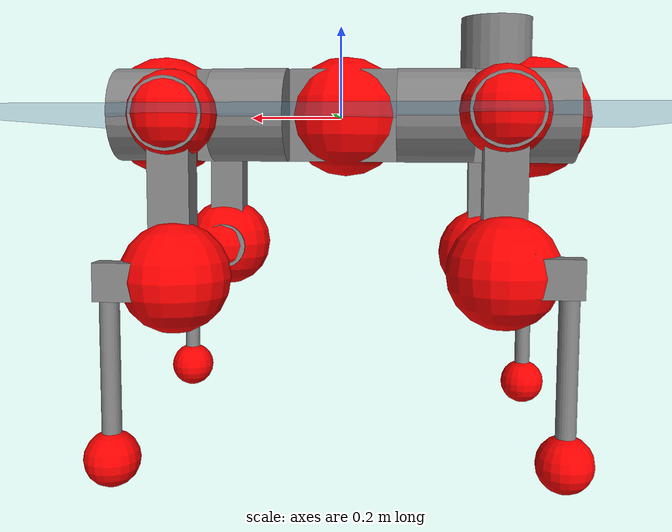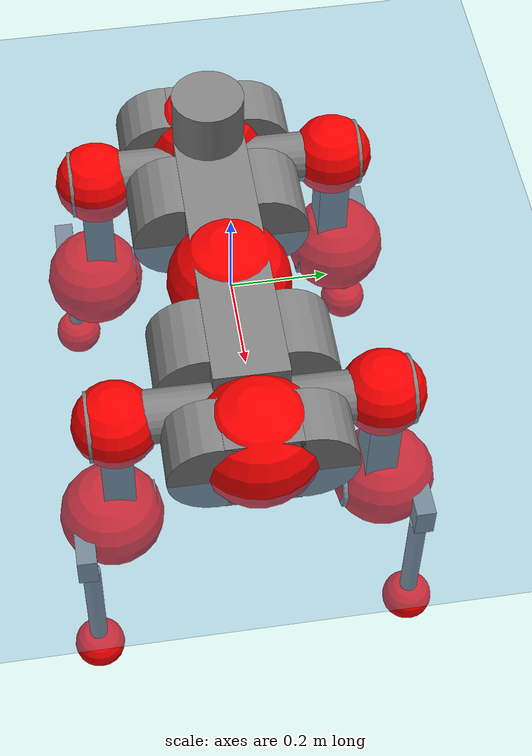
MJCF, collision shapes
<mujoco model="anymal_c">
  <compiler angle="radian" assetdir="assets" balanceinertia="true" inertiafromgeom="false"/>

  <option timestep="0.005" density="1.2" viscosity="2e-05"/>

  <size nkey="1"/>

  <visual>
    <quality shadowsize="8192"/>
    <map shadowclip="0.5"/>
  </visual>

  <default>
    <default class="/">
      <material specular="0" shininess="0.25"/>
      <geom contype="0" conaffinity="0" group="1" solref="-1000 -80"/>
      <site size="0.01 0.005 0.005" group="5"/>
      <general forcelimited="true" forcerange="-80 80" biastype="affine" gainprm="80" biasprm="0 -80 -2"/>
      <default class="anymal_c">
        <joint armature="0.01" damping="0.01" frictionloss="0.1"/>
        <default class="visual">
          <geom type="mesh" group="2"/>
          <default class="visual_zflip"/>
        </default>
        <default class="collision">
          <geom type="cylinder" group="3"/>
          <default class="foot">
            <geom size="0.03 0 0" type="sphere" condim="6" priority="1" friction="0.8 0.02 0.01" solimp="0.015 1 0.03"/>
          </default>
        </default>
      </default>
      <default class="reward_collision_sphere">
        <geom group="5" rgba="1 0 0 1"/>
      </default>
    </default>
  </default>

  <asset>
    <texture type="skybox" colorspace="auto" name="//unnamed_texture_0" builtin="gradient" rgb1="0.95 0.95 0.95" rgb2="0.95 0.95 0.95" width="100" height="600"/>
    <texture type="2d" colorspace="auto" name="texplane" builtin="checker" rgb1="0.345 0.575 0.748" rgb2="0.345 0.575 0.748" markrgb="1 1 1" width="512" height="512"/>
    <texture type="2d" colorspace="linear" name="base" file="base.png"/>
    <texture type="2d" colorspace="linear" name="top_shell" file="top_shell.png"/>
    <texture type="2d" colorspace="linear" name="bottom_shell" file="bottom_shell.png"/>
    <texture type="2d" colorspace="linear" name="remote" file="remote.png"/>
    <texture type="2d" colorspace="linear" name="hatch" file="hatch.png"/>
    <texture type="2d" colorspace="linear" name="handle" file="handle.png"/>
    <texture type="2d" colorspace="linear" name="face" file="face.png"/>
    <texture type="2d" colorspace="linear" name="battery" file="battery.png"/>
    <texture type="2d" colorspace="linear" name="lidar_cage" file="lidar_cage.png"/>
    <texture type="2d" colorspace="linear" name="depth_camera" file="depth_camera.png"/>
    <texture type="2d" colorspace="linear" name="wide_angle_camera" file="wide_angle_camera.png"/>
    <texture type="2d" colorspace="linear" name="lidar" file="lidar.png"/>
    <texture type="2d" colorspace="linear" name="drive" file="drive.png"/>
    <texture type="2d" colorspace="linear" name="hip_l" file="hip_l.png"/>
    <texture type="2d" colorspace="linear" name="shank_l" file="shank_l.png"/>
    <texture type="2d" colorspace="linear" name="foot" file="foot.png"/>
    <texture type="2d" colorspace="linear" name="thigh" file="thigh.png"/>
    <texture type="2d" colorspace="linear" name="shank_r" file="shank_r.png"/>
    <texture type="2d" colorspace="linear" name="hip_r" file="hip_r.png"/>
    <material name="MatPlane" class="/" texture="texplane" texuniform="true" texrepeat="2 2" specular="0.9" shininess="0.5"/>
    <material name="black_plastic" class="/" rgba="0.007 0.007 0.007 1"/>
    <material name="green" class="/" rgba="0.052 0.178 0.033 1"/>
    <material name="red" class="/" rgba="0.178 0.006 0.005 1"/>
    <material name="yellow" class="/" rgba="0.178 0.119 0.006 1"/>
    <material name="lwl" class="/" rgba="0.8 0.8 0.8 1"/>
    <material name="base" class="/" texture="base"/>
    <material name="top_shell" class="/" texture="top_shell"/>
    <material name="bottom_shell" class="/" texture="bottom_shell"/>
    <material name="hip_l" class="/" texture="hip_l"/>
    <material name="thigh" class="/" texture="thigh"/>
    <material name="shank_l" class="/" texture="shank_l"/>
    <material name="foot" class="/" texture="foot"/>
    <material name="hip_r" class="/" texture="hip_r"/>
    <material name="shank" class="/" texture="shank_r"/>
    <material name="hatch" class="/" texture="hatch"/>
    <material name="remote" class="/" texture="remote"/>
    <material name="handle" class="/" texture="handle"/>
    <material name="face" class="/" texture="face"/>
    <material name="depth_camera" class="/" texture="depth_camera"/>
    <material name="wide_angle_camera" class="/" texture="wide_angle_camera"/>
    <material name="battery" class="/" texture="battery"/>
    <material name="lidar_cage" class="/" texture="lidar_cage"/>
    <material name="lidar" class="/" texture="lidar"/>
    <material name="drive" class="/" texture="drive"/>
    <mesh name="base_0" class="/" file="base_0.obj"/>
    <mesh name="base_1" class="/" file="base_1.obj"/>
    <mesh name="base_2" class="/" file="base_2.obj"/>
    <mesh name="base_3" class="/" file="base_3.obj"/>
    <mesh name="base_4" class="/" file="base_4.obj"/>
    <mesh name="base_5" class="/" file="base_5.obj"/>
    <mesh name="top_shell" class="/" file="top_shell.obj"/>
    <mesh name="bottom_shell" class="/" file="bottom_shell.obj"/>
    <mesh name="remote" class="/" file="remote.obj"/>
    <mesh name="handle" class="/" file="handle.obj"/>
    <mesh name="face" class="/" file="face.obj"/>
    <mesh name="wide_angle_camera" class="/" file="wide_angle_camera.obj"/>
    <mesh name="depth_camera" class="/" file="depth_camera.obj"/>
    <mesh name="battery" class="/" file="battery.obj"/>
    <mesh name="lidar_cage" class="/" file="lidar_cage.obj"/>
    <mesh name="lidar" class="/" file="lidar.obj"/>
    <mesh name="drive" class="/" file="drive.obj"/>
    <mesh name="hip_l" class="/" file="hip_l.obj"/>
    <mesh name="thigh" class="/" file="thigh.obj"/>
    <mesh name="shank_l" class="/" file="shank_l.obj"/>
    <mesh name="foot" class="/" file="foot.obj"/>
    <mesh name="hip_r" class="/" file="hip_r.obj"/>
    <mesh name="hatch" class="/" file="hatch.obj"/>
    <mesh name="shank_r" class="/" file="shank_r.obj"/>
  </asset>

  <worldbody>
    <geom name="floor" class="/" size="100 100 0.125" type="plane" group="0" material="MatPlane"/>
    <light name="toplight_shadow" class="/" pos="0 0 5" dir="0.0990148 0.0990148 -0.990148" type="directional" ambient="0.04 0.04 0.04" diffuse="0.55 0.55 0.55" specular="0.12 0.12 0.12"/>
    <light name="toplight_fill" class="/" pos="0 0 5" dir="0.0990148 0.0990148 -0.990148" type="directional" castshadow="false" ambient="0.04 0.04 0.04" diffuse="0.3 0.3 0.3" specular="0.08 0.08 0.08"/>
    <body name="trunk" childclass="anymal_c" pos="-0.010614 -0.00185233 0.00312616" quat="0.999989 -0.000589487 -0.00294027 -0.00347404">
      <inertial pos="0.0121487 -0.00289854 0.0540442" quat="0.5024 0.497819 0.50075 0.49902" mass="28.1083" diaginertia="0.368297 2.17566 0.339915"/>
      <joint name="//unnamed_joint_0" type="free" armature="0" damping="0" frictionloss="0"/>
      <geom name="//unnamed_geom_1" class="visual" material="green" mesh="base_0"/>
      <geom name="//unnamed_geom_2" class="visual" material="yellow" mesh="base_1"/>
      <geom name="//unnamed_geom_3" class="visual" material="red" mesh="base_2"/>
      <geom name="//unnamed_geom_4" class="visual" material="black_plastic" mesh="base_3"/>
      <geom name="//unnamed_geom_5" class="visual" material="lwl" mesh="base_4"/>
      <geom name="//unnamed_geom_6" class="visual" material="base" mesh="base_5"/>
      <geom name="trunk_1" class="collision" size="0.318832 0.0769595 0.0989479" type="box"/>
      <geom name="trunk_2" class="collision" size="0.0989479 0.079708" pos="0.196118 0.0903991 0" quat="0.707107 0 0.707107 0"/>
      <geom name="trunk_3" class="collision" size="0.0989479 0.079708" pos="-0.196118 0.0903991 0" quat="0.707107 0 0.707107 0"/>
      <geom name="trunk_4" class="collision" size="0.0989479 0.079708" pos="0.196118 -0.0903991 0" quat="0.707107 0 0.707107 0"/>
      <geom name="trunk_5" class="collision" size="0.0989479 0.079708" pos="-0.196118 -0.0903991 0" quat="0.707107 0 0.707107 0"/>
      <geom name="//unnamed_geom_12" class="visual" material="top_shell" mesh="top_shell"/>
      <geom name="//unnamed_geom_13" class="visual" material="bottom_shell" mesh="bottom_shell"/>
      <geom name="//unnamed_geom_14" class="visual" material="remote" mesh="remote"/>
      <geom name="//unnamed_geom_15" class="visual" material="handle" mesh="handle"/>
      <geom name="//unnamed_geom_16" class="visual" pos="0.373752 0 0" quat="1 0 0 0" material="face" mesh="face"/>
      <geom name="trunk_6" class="collision" size="0.0604682 0.0769595 0.0989479" pos="0.423345 0 0" type="box"/>
      <geom name="//unnamed_geom_18" class="collision" size="0.0989479 0.0604682" pos="0.423345 0.0903991 0" quat="0.707107 0 0.707107 0"/>
      <geom name="//unnamed_geom_19" class="collision" size="0.0989479 0.0604682" pos="0.423345 -0.0903991 0" quat="0.707107 0 0.707107 0"/>
      <geom name="//unnamed_geom_20" class="visual" pos="0.416275 0 -0.0338168" quat="0.965926 0 0.258819 0" material="depth_camera" mesh="depth_camera"/>
      <geom name="//unnamed_geom_21" class="visual" pos="0.462569 0 0.0165442" material="wide_angle_camera" mesh="wide_angle_camera"/>
      <geom name="//unnamed_geom_22" class="visual_zflip" pos="-0.373752 0 0" quat="0 0 0 1" material="face" mesh="face"/>
      <geom name="trunk_7" class="collision" size="0.0604682 0.0769595 0.0989479" pos="-0.423345 0 0" quat="0 0 0 1" type="box"/>
      <geom name="//unnamed_geom_24" class="collision" size="0.0989479 0.0604682" pos="-0.423345 -0.0903991 0" quat="0 -0.707107 0 0.707107"/>
      <geom name="//unnamed_geom_25" class="collision" size="0.0989479 0.0604682" pos="-0.423345 0.0903991 0" quat="0 -0.707107 0 0.707107"/>
      <geom name="//unnamed_geom_26" class="visual" pos="-0.416275 0 -0.0338168" quat="0 -0.258819 0 0.965926" material="depth_camera" mesh="depth_camera"/>
      <geom name="//unnamed_geom_27" class="visual_zflip" pos="-0.462569 0 0.0165442" quat="0 0 0 1" material="wide_angle_camera" mesh="wide_angle_camera"/>
      <geom name="//unnamed_geom_28" class="visual" material="battery" mesh="battery"/>
      <geom name="//unnamed_geom_29" class="visual" pos="0 0.103864 0.0305584" quat="0.683013 -0.183013 0.183013 0.683013" material="depth_camera" mesh="depth_camera"/>
      <geom name="//unnamed_geom_30" class="visual" pos="0 -0.103864 0.0305584" quat="0.683013 0.183013 0.183013 -0.683013" material="depth_camera" mesh="depth_camera"/>
      <geom name="//unnamed_geom_31" class="visual" pos="-0.328216 0 0.0812288" quat="1 0 0 0" material="lidar_cage" mesh="lidar_cage"/>
      <geom name="trunk_8" class="collision" size="0.0769595 0.0659653" pos="-0.328216 0 0.147538"/>
      <geom name="//unnamed_geom_33" class="visual" pos="-0.328216 0.000153111 0.157153" quat="0.707107 0 0 -0.707107" material="lidar" mesh="lidar"/>
      <geom name="//unnamed_geom_34" class="visual" pos="0.270418 0.134241 3.21304e-09" quat="0.258819 0.965926 0 0" material="drive" mesh="drive"/>
      <geom name="//unnamed_geom_35" class="visual" pos="0.270418 -0.134241 -3.21304e-09" quat="0.258819 -0.965926 0 0" material="drive" mesh="drive"/>
      <geom name="//unnamed_geom_36" class="visual" pos="-0.270418 0.134241 -3.21304e-09" quat="0 0 0.965926 -0.258819" material="drive" mesh="drive"/>
      <geom name="//unnamed_geom_37" class="visual" pos="-0.270418 -0.134241 3.21304e-09" quat="0 0 -0.965926 -0.258819" material="drive" mesh="drive"/>
      <geom name="//unnamed_geom_38" class="visual" pos="0.104596 0 0.0806762" quat="1 0 0 0" material="hatch" mesh="hatch"/>
      <geom name="//unnamed_geom_39" class="reward_collision_sphere" size="0.131931"/>
      <geom name="//unnamed_geom_40" class="reward_collision_sphere" size="0.131931" pos="0.405762 0 0"/>
      <geom name="//unnamed_geom_41" class="reward_collision_sphere" size="0.131931" pos="-0.405762 0 0"/>
      <site name="imu" pos="0.215451 -0.00922255 0.00744694" size="0.0109942"/>
      <camera name="track" pos="0 -2.58283 0" quat="0.707107 0.707107 0 0" mode="trackcom"/>
      <camera name="ego_camera" pos="0.405762 0 -0.0442062" quat="-0.5 -0.5 0.5 0.5"/>
      <body name="LF_HIP" pos="0.270729 0.135254 -0.00250417" quat="0.259648 0.965703 0.00100535 0.000648464">
        <inertial pos="0.0513523 -0.0134905 -0.010407" quat="-0.129684 0.704112 -0.134942 0.684981" mass="3.84813" diaginertia="0.00303073 0.0168939 0.00540819"/>
        <joint name="LF_HAA" pos="0 0 0" axis="0.99866 -0.0477577 0.0199314" stiffness="0.00745358" range="-0.922329 0.457978" armature="0.0115179" damping="0" frictionloss="0.1106"/>
        <geom name="//unnamed_geom_42" class="visual" pos="0 0.000189008 -3.10445e-05" quat="0.258819 -0.965926 0 0" material="hip_l" mesh="hip_l"/>
        <geom name="//unnamed_geom_43" class="visual" pos="0.0540114 -0.0705115 -0.0393321" quat="0.183013 -0.683013 0.683013 0.183013" material="drive" mesh="drive"/>
        <geom name="//unnamed_geom_44" class="collision" size="0.054971 0.0769595" pos="0.0540114 -0.0154451 -0.00763109" quat="-0.353553 -0.612372 0.612372 -0.353553"/>
        <body name="LF_THIGH" pos="0.0506055 -0.09353 -0.0504693" quat="0.182679 -0.680321 0.685851 0.182757">
          <inertial pos="0.0217856 0.00518504 -0.262534" quat="0.993162 -0.00524867 -0.0806455 0.084249" mass="4.29033" diaginertia="0.0186136 0.11836 0.00640952"/>
          <joint name="LF_HFE" pos="0 0 0" axis="0.999976 -0.00686684 -0.000442649" stiffness="0.0538152" range="-3.19806 3.14374" armature="0.0124325" damping="0.0163849" frictionloss="0.118477"/>
          <geom name="//unnamed_geom_45" class="visual" pos="-0.00775394 -1.22184e-05 0" quat="0.707107 0 0 -0.707107" material="thigh" mesh="thigh"/>
          <geom name="//unnamed_geom_46" class="collision" size="0.0714624 0.0439768" pos="0.0360677 0 0" quat="0.5 0.5 -0.5 -0.5"/>
          <geom name="//unnamed_geom_47" class="collision" size="0.0412283 0.0329826 0.155364" pos="0.0270508 0 -0.156174" quat="0.707107 0 0 -0.707107" type="box"/>
          <geom name="//unnamed_geom_48" class="visual" pos="0.0904398 0 -0.314969" quat="1 0 0 0" material="drive" mesh="drive"/>
          <geom name="//unnamed_geom_49" class="collision" size="0.054971 0.0769595" pos="0.0273213 0 -0.314969" quat="0.707107 0 0.707107 0"/>
          <geom name="//unnamed_geom_50" class="reward_collision_sphere" size="0.0879537" pos="0.0225423 0 0"/>
          <body name="LF_SHANK" pos="0.0923187 0.00910272 -0.318371" quat="0.999997 -0.000533597 -0.00207917 0.00118842">
            <inertial pos="0.0123244 -0.080001 -0.0946173" quat="0.992577 -0.116208 -0.000198325 -0.0358549" mass="0.76532" diaginertia="0.00552379 0.0267972 0.0015741"/>
            <joint name="LF_KFE" pos="0 0 0" axis="0.999974 -0.00711989 0.000869537" range="-2.95989 3.17769" armature="0.00919381" damping="0.0449175" frictionloss="0.0893426"/>
            <geom name="//unnamed_geom_51" class="visual" pos="-0.00252839 -0.0134815 0" quat="0.707107 0 0 -0.707107" material="shank_l" mesh="shank_l"/>
            <geom name="LF_kfe_act" class="collision" size="0.0659653 0.0219884" pos="0.0180339 0 0" quat="0.5 0.5 -0.5 -0.5"/>
            <geom name="//unnamed_geom_53" class="collision" size="0.0632156 0.0371055 0.020889" pos="0.0180339 -0.0742551 0" quat="0.5 0.5 -0.5 -0.5" type="box"/>
            <geom name="//unnamed_geom_54" class="visual" pos="0.0117677 -0.117925 -0.373509" quat="0.382683 0 0 -0.92388" material="foot" mesh="foot"/>
            <geom name="LF_calf" class="collision" size="0.0192399 0.155295" pos="0.0117671 -0.11358 -0.186754" quat="0.707107 0 0 -0.707107"/>
            <geom name="LF_foot" class="foot" size="0.0206866" pos="0.0117671 -0.11358 -0.348643" quat="0.707107 0 0 -0.707107"/>
            <geom name="//unnamed_geom_57" class="reward_collision_sphere" size="0.109942" pos="-0.0450847 0 0"/>
            <geom name="//unnamed_geom_58" class="reward_collision_sphere" size="0.054971" pos="0.0117671 -0.11358 -0.348643"/>
            <site name="LF_foot" class="foot" pos="0.0117671 -0.11358 -0.348643" quat="0.707107 0 0 -0.707107" size="0.0109942"/>
          </body>
        </body>
      </body>
      <body name="RF_HIP" pos="0.272027 -0.135646 0.00924963" quat="0.256719 -0.966483 0.000689543 -0.00250473">
        <inertial pos="0.0475187 0.0281092 -0.00952467" quat="0.117955 0.678713 0.161671 0.70661" mass="3.75261" diaginertia="0.00397335 0.018529 0.00608"/>
        <joint name="RF_HAA" pos="0 0 0" axis="0.999811 0.0192125 -0.00287178" range="-0.51917 0.712718" armature="0.0105977" damping="0.0201872" frictionloss="0.152878"/>
        <geom name="//unnamed_geom_59" class="visual" pos="0 -0.000189007 -3.10444e-05" quat="0.258819 0.965926 0 0" material="hip_r" mesh="hip_r"/>
        <geom name="//unnamed_geom_60" class="visual" pos="0.0540114 0.0705115 -0.0393321" quat="0.183013 0.683013 0.683013 -0.183013" material="drive" mesh="drive"/>
        <geom name="//unnamed_geom_61" class="collision" size="0.054971 0.0769595" pos="0.0540114 0.0154451 -0.00763109" quat="-0.353553 0.612372 0.612372 0.353553"/>
        <body name="RF_THIGH" pos="0.0548672 0.104214 -0.0461957" quat="0.183117 0.683831 0.682212 -0.182839">
          <inertial pos="0.0236708 0.00667824 -0.273115" quat="0.995502 -0.00425699 -0.059042 0.0739731" mass="3.98768" diaginertia="0.018369 0.113512 0.00650105"/>
          <joint name="RF_HFE" pos="0 0 0" axis="0.99997 0.00767583 -0.000834586" stiffness="0.0216742" range="-3.17006 2.99609" armature="0.0114296" damping="0.00986951" frictionloss="0.0948674"/>
          <geom name="//unnamed_geom_62" class="visual" pos="-0.00775394 -1.22184e-05 0" quat="0.707107 0 0 -0.707107" material="thigh" mesh="thigh"/>
          <geom name="//unnamed_geom_63" class="collision" size="0.0714624 0.0439768" pos="0.0360677 0 0" quat="0.5 0.5 0.5 0.5"/>
          <geom name="//unnamed_geom_64" class="collision" size="0.0412283 0.0329826 0.155364" pos="0.0270508 0 -0.156174" quat="0.707107 0 0 0.707107" type="box"/>
          <geom name="//unnamed_geom_65" class="visual" pos="0.0904398 0 -0.314969" quat="1 0 0 0" material="drive" mesh="drive"/>
          <geom name="//unnamed_geom_66" class="collision" size="0.054971 0.0769595" pos="0.0273213 0 -0.314969" quat="0.707107 0 0.707107 0"/>
          <geom name="//unnamed_geom_67" class="reward_collision_sphere" size="0.0879537" pos="0.0225423 0 0"/>
          <body name="RF_SHANK" pos="0.0911126 0.00714071 -0.313819" quat="1 1.53965e-05 5.94411e-05 -0.000100488">
            <inertial pos="0.00426078 0.081004 -0.0874532" quat="0.989957 0.133093 0.0378356 0.0289791" mass="0.757503" diaginertia="0.00604499 0.0327931 0.00197163"/>
            <joint name="RF_KFE" pos="0 0 0" axis="0.998845 -0.0413851 -0.0243965" stiffness="0.0392657" range="-3.08732 3.02138" armature="0.0117254" damping="0" frictionloss="0.122226"/>
            <geom name="//unnamed_geom_68" class="visual" pos="-0.00252838 0.0134815 0" quat="0.707107 0 0 0.707107" material="shank" mesh="shank_r"/>
            <geom name="RF_kfe_act" class="collision" size="0.0659653 0.0219884" pos="0.0180339 0 0" quat="0.5 0.5 0.5 0.5"/>
            <geom name="//unnamed_geom_70" class="collision" size="0.0632156 0.0371055 0.020889" pos="0.0180339 0.0742551 0" quat="0.5 0.5 0.5 0.5" type="box"/>
            <geom name="//unnamed_geom_71" class="visual" pos="0.0117665 0.117925 -0.373509" quat="0.382683 0 0 0.92388" material="foot" mesh="foot"/>
            <geom name="RF_calf" class="collision" size="0.0192399 0.155295" pos="0.0117671 0.11358 -0.186754" quat="0.707107 0 0 0.707107"/>
            <geom name="RF_foot" class="foot" size="0.0335157" pos="0.0117671 0.11358 -0.348643" quat="0.707107 0 0 0.707107"/>
            <geom name="//unnamed_geom_74" class="reward_collision_sphere" size="0.109942" pos="-0.0450847 0 0"/>
            <geom name="//unnamed_geom_75" class="reward_collision_sphere" size="0.054971" pos="0.0117671 0.11358 -0.348643"/>
            <site name="RF_foot" class="foot" pos="0.0117671 0.11358 -0.348643" quat="0.707107 0 0 0.707107" size="0.0109942"/>
          </body>
        </body>
      </body>
      <body name="LH_HIP" pos="-0.270738 0.135268 0.00634209" quat="-0.000746786 0.000228507 0.965967 -0.258663">
        <inertial pos="0.04927 0.010059 -0.00285483" quat="0.16536 0.659288 0.169186 0.713703" mass="3.27058" diaginertia="0.00358029 0.0173408 0.0048419"/>
        <joint name="LH_HAA" pos="0 0 0" axis="0.999987 -0.00271059 0.00443235" range="-0.517268 0.811388" armature="0.0147036" damping="0.0104794" frictionloss="0.0631405"/>
        <geom name="//unnamed_geom_76" class="visual" pos="0 -0.000189007 -3.10444e-05" quat="-0.258819 -0.965926 0 0" material="hip_r" mesh="hip_r"/>
        <geom name="//unnamed_geom_77" class="visual" pos="0.0540114 0.0705115 -0.0393321" quat="0.183013 0.683013 0.683013 -0.183013" material="drive" mesh="drive"/>
        <geom name="//unnamed_geom_78" class="collision" size="0.054971 0.0769595" pos="0.0540114 0.0154451 -0.00763109" quat="-0.353553 0.612372 0.612372 0.353553"/>
        <body name="LH_THIGH" pos="0.0544017 0.101905 -0.0547428" quat="0.18312 0.683567 0.682475 -0.182843">
          <inertial pos="0.0272253 3.1509e-05 -0.27065" quat="0.993568 -0.00563944 -0.0793114 0.0806249" mass="3.55845" diaginertia="0.0183359 0.107814 0.00639845"/>
          <joint name="LH_HFE" pos="0 0 0" axis="0.999722 -0.00237152 0.0234534" range="-3.1049 3.17724" armature="0.00765589" damping="0.0277367" frictionloss="0.107306"/>
          <geom name="//unnamed_geom_79" class="visual" pos="-0.00775394 -1.22184e-05 0" quat="0.707107 0 0 -0.707107" material="thigh" mesh="thigh"/>
          <geom name="//unnamed_geom_80" class="collision" size="0.0714624 0.0439768" pos="0.0360677 0 0" quat="0.5 0.5 -0.5 -0.5"/>
          <geom name="//unnamed_geom_81" class="collision" size="0.0412283 0.0329826 0.155364" pos="0.0270508 0 -0.156174" quat="0.707107 0 0 -0.707107" type="box"/>
          <geom name="//unnamed_geom_82" class="visual" pos="0.0904398 0 -0.314969" quat="1 0 0 0" material="drive" mesh="drive"/>
          <geom name="//unnamed_geom_83" class="collision" size="0.054971 0.0769595" pos="0.0273213 0 -0.314969" quat="0.707107 0 0.707107 0"/>
          <geom name="//unnamed_geom_84" class="reward_collision_sphere" size="0.0879537" pos="0.0225423 0 0"/>
          <body name="LH_SHANK" pos="0.0914568 2.29902e-05 -0.305793" quat="1 7.7146e-05 6.0444e-05 -1.02382e-05">
            <inertial pos="0.00650457 0.0689131 -0.087347" quat="0.994981 0.0973804 -0.00314046 0.0227867" mass="0.766272" diaginertia="0.00625353 0.0333925 0.00204819"/>
            <joint name="LH_KFE" pos="0 0 0" axis="0.999994 0.00275361 -0.00231103" stiffness="0.0526587" range="-3.14351 3.08351" armature="0.00889616" damping="0.031932" frictionloss="0.0555556"/>
            <geom name="//unnamed_geom_85" class="visual" pos="-0.00252838 0.0134815 0" quat="-0.707107 0 0 -0.707107" material="shank" mesh="shank_r"/>
            <geom name="LH_kfe_act" class="collision" size="0.0659653 0.0219884" pos="0.0180339 0 0" quat="0.5 0.5 -0.5 -0.5"/>
            <geom name="//unnamed_geom_87" class="collision" size="0.0632156 0.0371055 0.020889" pos="0.0180339 0.0742551 0" quat="0.5 0.5 -0.5 -0.5" type="box"/>
            <geom name="//unnamed_geom_88" class="visual" pos="0.0117665 0.117925 -0.373509" quat="-0.382683 0 0 -0.92388" material="foot" mesh="foot"/>
            <geom name="LH_calf" class="collision" size="0.0192399 0.155295" pos="0.0117671 0.11358 -0.186754" quat="0.707107 0 0 -0.707107"/>
            <geom name="LH_foot" class="foot" size="0.0374259" pos="0.0117671 0.11358 -0.348643" quat="0.707107 0 0 -0.707107"/>
            <geom name="//unnamed_geom_91" class="reward_collision_sphere" size="0.109942" pos="-0.0450847 0 0"/>
            <geom name="//unnamed_geom_92" class="reward_collision_sphere" size="0.054971" pos="0.0117671 0.11358 -0.348643"/>
            <site name="LH_foot" class="foot" pos="0.0117671 0.11358 -0.348643" quat="0.707107 0 0 -0.707107" size="0.0109942"/>
          </body>
        </body>
      </body>
      <body name="RH_HIP" pos="-0.271941 -0.130507 0.00130208" quat="0.00266595 -0.0039563 -0.965731 -0.259503">
        <inertial pos="0.0411099 -0.0261132 0.000697986" quat="-0.113216 0.707016 -0.16017 0.679452" mass="3.67544" diaginertia="0.0034277 0.0172931 0.0053185"/>
        <joint name="RH_HAA" pos="0 0 0" axis="0.998665 0.0500257 -0.0128513" range="-0.753177 0.513134" armature="0.0128712" damping="0.00903536" frictionloss="0.113279"/>
        <geom name="//unnamed_geom_93" class="visual" pos="0 0.000189008 -3.10445e-05" quat="-0.258819 0.965926 0 0" material="hip_l" mesh="hip_l"/>
        <geom name="//unnamed_geom_94" class="visual" pos="0.0540114 -0.0705115 -0.0393321" quat="-0.183013 0.683013 -0.683013 -0.183013" material="drive" mesh="drive"/>
        <geom name="//unnamed_geom_95" class="collision" size="0.054971 0.0769595" pos="0.0540114 -0.0154451 -0.00763109" quat="0.353553 0.612372 -0.612372 0.353553"/>
        <body name="RH_THIGH" pos="0.0543953 -0.0918136 -0.0363383" quat="-0.182636 0.683098 -0.683109 -0.182713">
          <inertial pos="0.026578 0.000611912 -0.271011" quat="0.993358 -0.00327214 -0.0839822 0.0785886" mass="4.46191" diaginertia="0.017739 0.0997885 0.00690414"/>
          <joint name="RH_HFE" pos="0 0 0" axis="0.999997 -0.00181705 -0.0017351" range="-3.15131 2.981" armature="0.0100998" damping="0.0141449" frictionloss="0.113017"/>
          <geom name="//unnamed_geom_96" class="visual" pos="-0.00775394 -1.22184e-05 0" quat="0.707107 0 0 -0.707107" material="thigh" mesh="thigh"/>
          <geom name="//unnamed_geom_97" class="collision" size="0.0714624 0.0439768" pos="0.0360677 0 0" quat="0.5 0.5 0.5 0.5"/>
          <geom name="//unnamed_geom_98" class="collision" size="0.0412283 0.0329826 0.155364" pos="0.0270508 0 -0.156174" quat="0.707107 0 0 0.707107" type="box"/>
          <geom name="//unnamed_geom_99" class="visual" pos="0.0904398 0 -0.314969" quat="1 0 0 0" material="drive" mesh="drive"/>
          <geom name="//unnamed_geom_100" class="collision" size="0.054971 0.0769595" pos="0.0273213 0 -0.314969" quat="0.707107 0 0.707107 0"/>
          <geom name="//unnamed_geom_101" class="reward_collision_sphere" size="0.0879537" pos="0.0225423 0 0"/>
          <body name="RH_SHANK" pos="0.0900464 0.00334099 -0.318001" quat="1 0.000559948 0.000131186 -2.92631e-05">
            <inertial pos="0.0111176 -0.0775245 -0.091149" quat="0.993007 -0.114207 -0.0204835 -0.0217839" mass="0.76227" diaginertia="0.00590086 0.0338495 0.00167163"/>
            <joint name="RH_KFE" pos="0 0 0" axis="0.999067 0.0288706 0.0321203" range="-3.10289 3.11034" armature="0.0113662" damping="0" frictionloss="0.112513"/>
            <geom name="//unnamed_geom_102" class="visual" pos="-0.00252839 -0.0134815 0" quat="0.707107 0 0 -0.707107" material="shank_l" mesh="shank_l"/>
            <geom name="RH_kfe_act" class="collision" size="0.0659653 0.0219884" pos="0.0180339 0 0" quat="0.5 0.5 0.5 0.5"/>
            <geom name="//unnamed_geom_104" class="collision" size="0.0632156 0.0371055 0.020889" pos="0.0180339 -0.0742551 0" quat="0.5 0.5 0.5 0.5" type="box"/>
            <geom name="//unnamed_geom_105" class="visual" pos="0.0117677 -0.117925 -0.373509" quat="0.382683 0 0 -0.92388" material="foot" mesh="foot"/>
            <geom name="RH_calf" class="collision" size="0.0192399 0.155295" pos="0.0117671 -0.11358 -0.186754" quat="0.707107 0 0 0.707107"/>
            <geom name="RH_foot" class="foot" size="0.0427519" pos="0.0117671 -0.11358 -0.348643" quat="0.707107 0 0 0.707107"/>
            <geom name="//unnamed_geom_108" class="reward_collision_sphere" size="0.109942" pos="-0.0450847 0 0"/>
            <geom name="//unnamed_geom_109" class="reward_collision_sphere" size="0.054971" pos="0.0117671 -0.11358 -0.348643"/>
            <site name="RH_foot" class="foot" pos="0.0117671 -0.11358 -0.348643" quat="0.707107 0 0 0.707107" size="0.0109942"/>
          </body>
        </body>
      </body>
    </body>
  </worldbody>

  <contact>
    <pair class="/" geom1="floor" geom2="LF_foot" name="//unnamed_contact_0"/>
    <pair class="/" geom1="floor" geom2="RF_foot" name="//unnamed_contact_1"/>
    <pair class="/" geom1="floor" geom2="LH_foot" name="//unnamed_contact_2"/>
    <pair class="/" geom1="floor" geom2="RH_foot" name="//unnamed_contact_3"/>
  </contact>

  <actuator>
    <general name="LF_HAA" class="/" joint="LF_HAA" forcerange="-90.2385 90.2385" gainprm="78.8225" biasprm="0 -78.8225 -2.55644"/>
    <general name="LF_HFE" class="/" joint="LF_HFE" forcerange="-100.604 100.604" gainprm="78.8225" biasprm="0 -78.8225 -2.55644"/>
    <general name="LF_KFE" class="/" joint="LF_KFE" forcerange="-84.1214 84.1214" gainprm="78.8225" biasprm="0 -78.8225 -2.55644"/>
    <general name="RF_HAA" class="/" joint="RF_HAA" forcerange="-84.7866 84.7866" gainprm="78.8225" biasprm="0 -78.8225 -2.55644"/>
    <general name="RF_HFE" class="/" joint="RF_HFE" forcerange="-75.9952 75.9952" gainprm="78.8225" biasprm="0 -78.8225 -2.55644"/>
    <general name="RF_KFE" class="/" joint="RF_KFE" forcerange="-87.0498 87.0498" gainprm="78.8225" biasprm="0 -78.8225 -2.55644"/>
    <general name="LH_HAA" class="/" joint="LH_HAA" forcerange="-56.2932 56.2932" gainprm="78.8225" biasprm="0 -78.8225 -2.55644"/>
    <general name="LH_HFE" class="/" joint="LH_HFE" forcerange="-99.4913 99.4913" gainprm="78.8225" biasprm="0 -78.8225 -2.55644"/>
    <general name="LH_KFE" class="/" joint="LH_KFE" forcerange="-119.655 119.655" gainprm="78.8225" biasprm="0 -78.8225 -2.55644"/>
    <general name="RH_HAA" class="/" joint="RH_HAA" forcerange="-106.076 106.076" gainprm="78.8225" biasprm="0 -78.8225 -2.55644"/>
    <general name="RH_HFE" class="/" joint="RH_HFE" forcerange="-57.7691 57.7691" gainprm="78.8225" biasprm="0 -78.8225 -2.55644"/>
    <general name="RH_KFE" class="/" joint="RH_KFE" forcerange="-92.4116 92.4116" gainprm="78.8225" biasprm="0 -78.8225 -2.55644"/>
  </actuator>

  <sensor>
    <gyro site="imu" name="imu_angular_velocity"/>
    <velocimeter site="imu" name="imu_linear_velocity"/>
    <framelinvel objtype="site" objname="LF_foot" name="LF_foot_global_linear_velocity"/>
    <framelinvel objtype="site" objname="RF_foot" name="RF_foot_global_linear_velocity"/>
    <framelinvel objtype="site" objname="LH_foot" name="LH_foot_global_linear_velocity"/>
    <framelinvel objtype="site" objname="RH_foot" name="RH_foot_global_linear_velocity"/>
  </sensor>

  <keyframe>
    <key name="home" qpos="0 0 0.55 1 0 0 0 0 0.4 -0.8 0 -0.4 0.8 0 -0.4 0.8 0 0.4 -0.8"/>
  </keyframe>
</mujoco>
